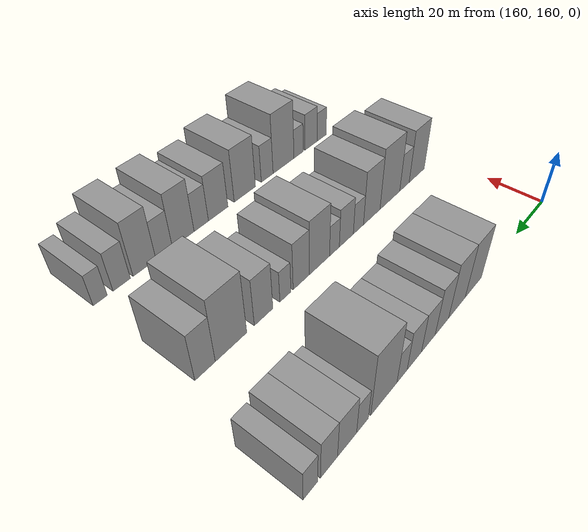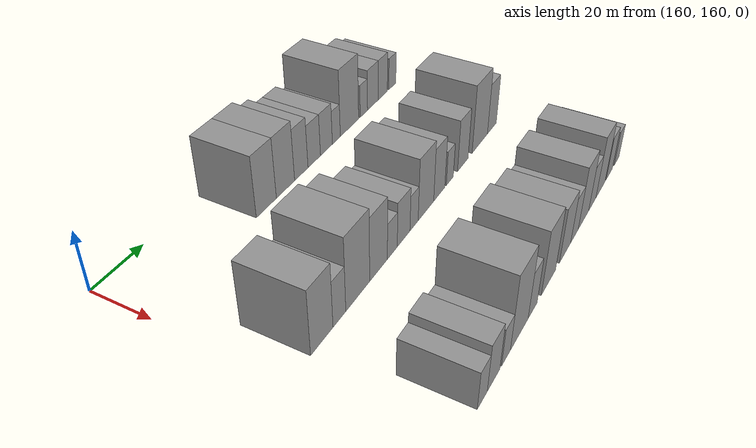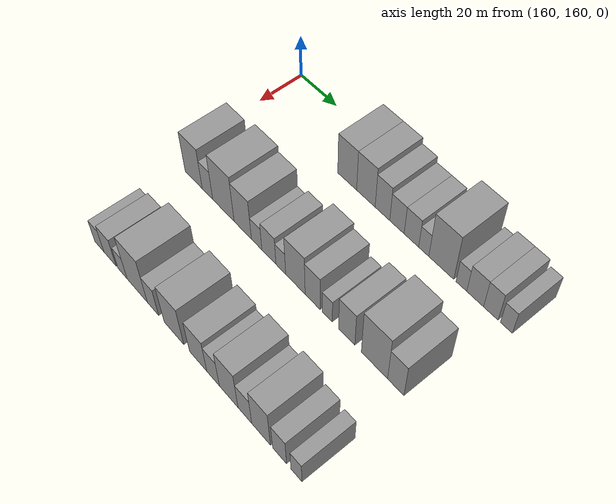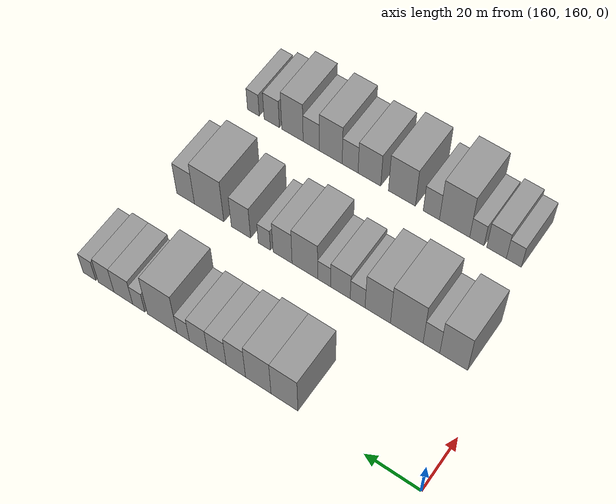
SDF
<sdf version="1.6">
 <world name="default">
  <model name="building_491">
   <static>1</static>
   <pose>170.0000 208.6546 0 0.000000 0.000000 0.000000</pose>
   <link name="link">
    <pose>0 0 10.50 0 0 0</pose>
    <collision name="collision"><geometry><box><size>20.0000 9.8735 21.0000</size></box></geometry></collision>
    <visual name="visual">
     <cast_shadows>0</cast_shadows>
     <geometry><box><size>20.0000 9.8735 21.0000</size></box></geometry>
     <material>
      <script>
       <uri>model://grey_wall/materials/scripts</uri>
       <uri>model://grey_wall/materials/textures</uri>
       <name>vrc/grey_wall</name>
      </script>
     </material>
    </visual>
   </link>
  </model>
  <model name="building_492">
   <static>1</static>
   <pose>170.0000 218.3264 0 0.000000 0.000000 0.000000</pose>
   <link name="link">
    <pose>0 0 10.50 0 0 0</pose>
    <collision name="collision"><geometry><box><size>20.0000 9.4702 21.0000</size></box></geometry></collision>
    <visual name="visual">
     <cast_shadows>0</cast_shadows>
     <geometry><box><size>20.0000 9.4702 21.0000</size></box></geometry>
     <material>
      <script>
       <uri>model://grey_wall/materials/scripts</uri>
       <uri>model://grey_wall/materials/textures</uri>
       <name>vrc/grey_wall</name>
      </script>
     </material>
    </visual>
   </link>
  </model>
  <model name="building_493">
   <static>1</static>
   <pose>170.0000 226.7028 0 0.000000 0.000000 0.000000</pose>
   <link name="link">
    <pose>0 0 9.00 0 0 0</pose>
    <collision name="collision"><geometry><box><size>20.0000 7.2827 18.0000</size></box></geometry></collision>
    <visual name="visual">
     <cast_shadows>0</cast_shadows>
     <geometry><box><size>20.0000 7.2827 18.0000</size></box></geometry>
     <material>
      <script>
       <uri>model://grey_wall/materials/scripts</uri>
       <uri>model://grey_wall/materials/textures</uri>
       <name>vrc/grey_wall</name>
      </script>
     </material>
    </visual>
   </link>
  </model>
  <model name="building_494">
   <static>1</static>
   <pose>170.0000 233.8704 0 0.000000 0.000000 0.000000</pose>
   <link name="link">
    <pose>0 0 7.50 0 0 0</pose>
    <collision name="collision"><geometry><box><size>20.0000 7.0526 15.0000</size></box></geometry></collision>
    <visual name="visual">
     <cast_shadows>0</cast_shadows>
     <geometry><box><size>20.0000 7.0526 15.0000</size></box></geometry>
     <material>
      <script>
       <uri>model://grey_wall/materials/scripts</uri>
       <uri>model://grey_wall/materials/textures</uri>
       <name>vrc/grey_wall</name>
      </script>
     </material>
    </visual>
   </link>
  </model>
  <model name="building_495">
   <static>1</static>
   <pose>170.0000 240.8802 0 0.000000 0.000000 0.000000</pose>
   <link name="link">
    <pose>0 0 7.50 0 0 0</pose>
    <collision name="collision"><geometry><box><size>20.0000 6.9671 15.0000</size></box></geometry></collision>
    <visual name="visual">
     <cast_shadows>0</cast_shadows>
     <geometry><box><size>20.0000 6.9671 15.0000</size></box></geometry>
     <material>
      <script>
       <uri>model://grey_wall/materials/scripts</uri>
       <uri>model://grey_wall/materials/textures</uri>
       <name>vrc/grey_wall</name>
      </script>
     </material>
    </visual>
   </link>
  </model>
  <model name="building_496">
   <static>1</static>
   <pose>170.0000 246.7692 0 0.000000 0.000000 0.000000</pose>
   <link name="link">
    <pose>0 0 6.00 0 0 0</pose>
    <collision name="collision"><geometry><box><size>20.0000 4.8109 12.0000</size></box></geometry></collision>
    <visual name="visual">
     <cast_shadows>0</cast_shadows>
     <geometry><box><size>20.0000 4.8109 12.0000</size></box></geometry>
     <material>
      <script>
       <uri>model://grey_wall/materials/scripts</uri>
       <uri>model://grey_wall/materials/textures</uri>
       <name>vrc/grey_wall</name>
      </script>
     </material>
    </visual>
   </link>
  </model>
  <model name="building_497">
   <static>1</static>
   <pose>170.0000 254.9441 0 0.000000 0.000000 0.000000</pose>
   <link name="link">
    <pose>0 0 12.00 0 0 0</pose>
    <collision name="collision"><geometry><box><size>20.0000 11.5389 24.0000</size></box></geometry></collision>
    <visual name="visual">
     <cast_shadows>0</cast_shadows>
     <geometry><box><size>20.0000 11.5389 24.0000</size></box></geometry>
     <material>
      <script>
       <uri>model://grey_wall/materials/scripts</uri>
       <uri>model://grey_wall/materials/textures</uri>
       <name>vrc/grey_wall</name>
      </script>
     </material>
    </visual>
   </link>
  </model>
  <model name="building_498">
   <static>1</static>
   <pose>170.0000 264.1340 0 0.000000 0.000000 0.000000</pose>
   <link name="link">
    <pose>0 0 6.00 0 0 0</pose>
    <collision name="collision"><geometry><box><size>20.0000 4.8408 12.0000</size></box></geometry></collision>
    <visual name="visual">
     <cast_shadows>0</cast_shadows>
     <geometry><box><size>20.0000 4.8408 12.0000</size></box></geometry>
     <material>
      <script>
       <uri>model://grey_wall/materials/scripts</uri>
       <uri>model://grey_wall/materials/textures</uri>
       <name>vrc/grey_wall</name>
      </script>
     </material>
    </visual>
   </link>
  </model>
  <model name="building_499">
   <static>1</static>
   <pose>170.0000 270.2805 0 0.000000 0.000000 0.000000</pose>
   <link name="link">
    <pose>0 0 7.50 0 0 0</pose>
    <collision name="collision"><geometry><box><size>20.0000 7.4522 15.0000</size></box></geometry></collision>
    <visual name="visual">
     <cast_shadows>0</cast_shadows>
     <geometry><box><size>20.0000 7.4522 15.0000</size></box></geometry>
     <material>
      <script>
       <uri>model://grey_wall/materials/scripts</uri>
       <uri>model://grey_wall/materials/textures</uri>
       <name>vrc/grey_wall</name>
      </script>
     </material>
    </visual>
   </link>
  </model>
  <model name="building_500">
   <static>1</static>
   <pose>170.0000 277.1647 0 0.000000 0.000000 0.000000</pose>
   <link name="link">
    <pose>0 0 7.50 0 0 0</pose>
    <collision name="collision"><geometry><box><size>20.0000 6.3161 15.0000</size></box></geometry></collision>
    <visual name="visual">
     <cast_shadows>0</cast_shadows>
     <geometry><box><size>20.0000 6.3161 15.0000</size></box></geometry>
     <material>
      <script>
       <uri>model://grey_wall/materials/scripts</uri>
       <uri>model://grey_wall/materials/textures</uri>
       <name>vrc/grey_wall</name>
      </script>
     </material>
    </visual>
   </link>
  </model>
  <model name="building_501">
   <static>1</static>
   <pose>170.0000 283.8808 0 0.000000 0.000000 0.000000</pose>
   <link name="link">
    <pose>0 0 6.00 0 0 0</pose>
    <collision name="collision"><geometry><box><size>20.0000 5.1161 12.0000</size></box></geometry></collision>
    <visual name="visual">
     <cast_shadows>0</cast_shadows>
     <geometry><box><size>20.0000 5.1161 12.0000</size></box></geometry>
     <material>
      <script>
       <uri>model://grey_wall/materials/scripts</uri>
       <uri>model://grey_wall/materials/textures</uri>
       <name>vrc/grey_wall</name>
      </script>
     </material>
    </visual>
   </link>
  </model>
  <model name="building_627">
   <static>1</static>
   <pose>210.0000 173.8556 0 0.000000 0.000000 0.000000</pose>
   <link name="link">
    <pose>0 0 10.50 0 0 0</pose>
    <collision name="collision"><geometry><box><size>20.0000 10.0076 21.0000</size></box></geometry></collision>
    <visual name="visual">
     <cast_shadows>0</cast_shadows>
     <geometry><box><size>20.0000 10.0076 21.0000</size></box></geometry>
     <material>
      <script>
       <uri>model://grey_wall/materials/scripts</uri>
       <uri>model://grey_wall/materials/textures</uri>
       <name>vrc/grey_wall</name>
      </script>
     </material>
    </visual>
   </link>
  </model>
  <model name="building_628">
   <static>1</static>
   <pose>210.0000 181.8722 0 0.000000 0.000000 0.000000</pose>
   <link name="link">
    <pose>0 0 7.50 0 0 0</pose>
    <collision name="collision"><geometry><box><size>20.0000 6.0256 15.0000</size></box></geometry></collision>
    <visual name="visual">
     <cast_shadows>0</cast_shadows>
     <geometry><box><size>20.0000 6.0256 15.0000</size></box></geometry>
     <material>
      <script>
       <uri>model://grey_wall/materials/scripts</uri>
       <uri>model://grey_wall/materials/textures</uri>
       <name>vrc/grey_wall</name>
      </script>
     </material>
    </visual>
   </link>
  </model>
  <model name="building_629">
   <static>1</static>
   <pose>210.0000 190.8622 0 0.000000 0.000000 0.000000</pose>
   <link name="link">
    <pose>0 0 12.00 0 0 0</pose>
    <collision name="collision"><geometry><box><size>20.0000 11.9543 24.0000</size></box></geometry></collision>
    <visual name="visual">
     <cast_shadows>0</cast_shadows>
     <geometry><box><size>20.0000 11.9543 24.0000</size></box></geometry>
     <material>
      <script>
       <uri>model://grey_wall/materials/scripts</uri>
       <uri>model://grey_wall/materials/textures</uri>
       <name>vrc/grey_wall</name>
      </script>
     </material>
    </visual>
   </link>
  </model>
  <model name="building_630">
   <static>1</static>
   <pose>210.0000 201.5550 0 0.000000 0.000000 0.000000</pose>
   <link name="link">
    <pose>0 0 10.50 0 0 0</pose>
    <collision name="collision"><geometry><box><size>20.0000 9.4315 21.0000</size></box></geometry></collision>
    <visual name="visual">
     <cast_shadows>0</cast_shadows>
     <geometry><box><size>20.0000 9.4315 21.0000</size></box></geometry>
     <material>
      <script>
       <uri>model://grey_wall/materials/scripts</uri>
       <uri>model://grey_wall/materials/textures</uri>
       <name>vrc/grey_wall</name>
      </script>
     </material>
    </visual>
   </link>
  </model>
  <model name="building_631">
   <static>1</static>
   <pose>210.0000 209.0473 0 0.000000 0.000000 0.000000</pose>
   <link name="link">
    <pose>0 0 6.00 0 0 0</pose>
    <collision name="collision"><geometry><box><size>20.0000 5.5529 12.0000</size></box></geometry></collision>
    <visual name="visual">
     <cast_shadows>0</cast_shadows>
     <geometry><box><size>20.0000 5.5529 12.0000</size></box></geometry>
     <material>
      <script>
       <uri>model://grey_wall/materials/scripts</uri>
       <uri>model://grey_wall/materials/textures</uri>
       <name>vrc/grey_wall</name>
      </script>
     </material>
    </visual>
   </link>
  </model>
  <model name="building_632">
   <static>1</static>
   <pose>210.0000 215.5193 0 0.000000 0.000000 0.000000</pose>
   <link name="link">
    <pose>0 0 7.50 0 0 0</pose>
    <collision name="collision"><geometry><box><size>20.0000 7.3912 15.0000</size></box></geometry></collision>
    <visual name="visual">
     <cast_shadows>0</cast_shadows>
     <geometry><box><size>20.0000 7.3912 15.0000</size></box></geometry>
     <material>
      <script>
       <uri>model://grey_wall/materials/scripts</uri>
       <uri>model://grey_wall/materials/textures</uri>
       <name>vrc/grey_wall</name>
      </script>
     </material>
    </visual>
   </link>
  </model>
  <model name="building_633">
   <static>1</static>
   <pose>210.0000 221.6967 0 0.000000 0.000000 0.000000</pose>
   <link name="link">
    <pose>0 0 6.00 0 0 0</pose>
    <collision name="collision"><geometry><box><size>20.0000 4.9636 12.0000</size></box></geometry></collision>
    <visual name="visual">
     <cast_shadows>0</cast_shadows>
     <geometry><box><size>20.0000 4.9636 12.0000</size></box></geometry>
     <material>
      <script>
       <uri>model://grey_wall/materials/scripts</uri>
       <uri>model://grey_wall/materials/textures</uri>
       <name>vrc/grey_wall</name>
      </script>
     </material>
    </visual>
   </link>
  </model>
  <model name="building_634">
   <static>1</static>
   <pose>210.0000 229.0891 0 0.000000 0.000000 0.000000</pose>
   <link name="link">
    <pose>0 0 10.50 0 0 0</pose>
    <collision name="collision"><geometry><box><size>20.0000 9.8212 21.0000</size></box></geometry></collision>
    <visual name="visual">
     <cast_shadows>0</cast_shadows>
     <geometry><box><size>20.0000 9.8212 21.0000</size></box></geometry>
     <material>
      <script>
       <uri>model://grey_wall/materials/scripts</uri>
       <uri>model://grey_wall/materials/textures</uri>
       <name>vrc/grey_wall</name>
      </script>
     </material>
    </visual>
   </link>
  </model>
  <model name="building_635">
   <static>1</static>
   <pose>210.0000 237.6921 0 0.000000 0.000000 0.000000</pose>
   <link name="link">
    <pose>0 0 9.00 0 0 0</pose>
    <collision name="collision"><geometry><box><size>20.0000 7.3848 18.0000</size></box></geometry></collision>
    <visual name="visual">
     <cast_shadows>0</cast_shadows>
     <geometry><box><size>20.0000 7.3848 18.0000</size></box></geometry>
     <material>
      <script>
       <uri>model://grey_wall/materials/scripts</uri>
       <uri>model://grey_wall/materials/textures</uri>
       <name>vrc/grey_wall</name>
      </script>
     </material>
    </visual>
   </link>
  </model>
  <model name="building_636">
   <static>1</static>
   <pose>210.0000 244.7992 0 0.000000 0.000000 0.000000</pose>
   <link name="link">
    <pose>0 0 6.00 0 0 0</pose>
    <collision name="collision"><geometry><box><size>20.0000 4.8296 12.0000</size></box></geometry></collision>
    <visual name="visual">
     <cast_shadows>0</cast_shadows>
     <geometry><box><size>20.0000 4.8296 12.0000</size></box></geometry>
     <material>
      <script>
       <uri>model://grey_wall/materials/scripts</uri>
       <uri>model://grey_wall/materials/textures</uri>
       <name>vrc/grey_wall</name>
      </script>
     </material>
    </visual>
   </link>
  </model>
  <model name="building_637">
   <static>1</static>
   <pose>210.0000 254.0417 0 0.000000 0.000000 0.000000</pose>
   <link name="link">
    <pose>0 0 9.00 0 0 0</pose>
    <collision name="collision"><geometry><box><size>20.0000 7.6553 18.0000</size></box></geometry></collision>
    <visual name="visual">
     <cast_shadows>0</cast_shadows>
     <geometry><box><size>20.0000 7.6553 18.0000</size></box></geometry>
     <material>
      <script>
       <uri>model://grey_wall/materials/scripts</uri>
       <uri>model://grey_wall/materials/textures</uri>
       <name>vrc/grey_wall</name>
      </script>
     </material>
    </visual>
   </link>
  </model>
  <model name="building_638">
   <static>1</static>
   <pose>210.0000 266.8141 0 0.000000 0.000000 0.000000</pose>
   <link name="link">
    <pose>0 0 12.00 0 0 0</pose>
    <collision name="collision"><geometry><box><size>20.0000 11.8895 24.0000</size></box></geometry></collision>
    <visual name="visual">
     <cast_shadows>0</cast_shadows>
     <geometry><box><size>20.0000 11.8895 24.0000</size></box></geometry>
     <material>
      <script>
       <uri>model://grey_wall/materials/scripts</uri>
       <uri>model://grey_wall/materials/textures</uri>
       <name>vrc/grey_wall</name>
      </script>
     </material>
    </visual>
   </link>
  </model>
  <model name="building_639">
   <static>1</static>
   <pose>210.0000 276.3681 0 0.000000 0.000000 0.000000</pose>
   <link name="link">
    <pose>0 0 9.00 0 0 0</pose>
    <collision name="collision"><geometry><box><size>20.0000 7.2185 18.0000</size></box></geometry></collision>
    <visual name="visual">
     <cast_shadows>0</cast_shadows>
     <geometry><box><size>20.0000 7.2185 18.0000</size></box></geometry>
     <material>
      <script>
       <uri>model://grey_wall/materials/scripts</uri>
       <uri>model://grey_wall/materials/textures</uri>
       <name>vrc/grey_wall</name>
      </script>
     </material>
    </visual>
   </link>
  </model>
  <model name="building_767">
   <static>1</static>
   <pose>250.0000 176.1910 0 0.000000 0.000000 0.000000</pose>
   <link name="link">
    <pose>0 0 6.00 0 0 0</pose>
    <collision name="collision"><geometry><box><size>20.0000 5.5089 12.0000</size></box></geometry></collision>
    <visual name="visual">
     <cast_shadows>0</cast_shadows>
     <geometry><box><size>20.0000 5.5089 12.0000</size></box></geometry>
     <material>
      <script>
       <uri>model://grey_wall/materials/scripts</uri>
       <uri>model://grey_wall/materials/textures</uri>
       <name>vrc/grey_wall</name>
      </script>
     </material>
    </visual>
   </link>
  </model>
  <model name="building_768">
   <static>1</static>
   <pose>250.0000 182.5848 0 0.000000 0.000000 0.000000</pose>
   <link name="link">
    <pose>0 0 7.50 0 0 0</pose>
    <collision name="collision"><geometry><box><size>20.0000 7.2788 15.0000</size></box></geometry></collision>
    <visual name="visual">
     <cast_shadows>0</cast_shadows>
     <geometry><box><size>20.0000 7.2788 15.0000</size></box></geometry>
     <material>
      <script>
       <uri>model://grey_wall/materials/scripts</uri>
       <uri>model://grey_wall/materials/textures</uri>
       <name>vrc/grey_wall</name>
      </script>
     </material>
    </visual>
   </link>
  </model>
  <model name="building_769">
   <static>1</static>
   <pose>250.0000 189.8993 0 0.000000 0.000000 0.000000</pose>
   <link name="link">
    <pose>0 0 6.00 0 0 0</pose>
    <collision name="collision"><geometry><box><size>20.0000 5.3502 12.0000</size></box></geometry></collision>
    <visual name="visual">
     <cast_shadows>0</cast_shadows>
     <geometry><box><size>20.0000 5.3502 12.0000</size></box></geometry>
     <material>
      <script>
       <uri>model://grey_wall/materials/scripts</uri>
       <uri>model://grey_wall/materials/textures</uri>
       <name>vrc/grey_wall</name>
      </script>
     </material>
    </visual>
   </link>
  </model>
  <model name="building_770">
   <static>1</static>
   <pose>250.0000 198.2873 0 0.000000 0.000000 0.000000</pose>
   <link name="link">
    <pose>0 0 12.00 0 0 0</pose>
    <collision name="collision"><geometry><box><size>20.0000 11.4258 24.0000</size></box></geometry></collision>
    <visual name="visual">
     <cast_shadows>0</cast_shadows>
     <geometry><box><size>20.0000 11.4258 24.0000</size></box></geometry>
     <material>
      <script>
       <uri>model://grey_wall/materials/scripts</uri>
       <uri>model://grey_wall/materials/textures</uri>
       <name>vrc/grey_wall</name>
      </script>
     </material>
    </visual>
   </link>
  </model>
  <model name="building_771">
   <static>1</static>
   <pose>250.0000 207.0915 0 0.000000 0.000000 0.000000</pose>
   <link name="link">
    <pose>0 0 7.50 0 0 0</pose>
    <collision name="collision"><geometry><box><size>20.0000 6.1825 15.0000</size></box></geometry></collision>
    <visual name="visual">
     <cast_shadows>0</cast_shadows>
     <geometry><box><size>20.0000 6.1825 15.0000</size></box></geometry>
     <material>
      <script>
       <uri>model://grey_wall/materials/scripts</uri>
       <uri>model://grey_wall/materials/textures</uri>
       <name>vrc/grey_wall</name>
      </script>
     </material>
    </visual>
   </link>
  </model>
  <model name="building_772">
   <static>1</static>
   <pose>250.0000 218.4120 0 0.000000 0.000000 0.000000</pose>
   <link name="link">
    <pose>0 0 10.50 0 0 0</pose>
    <collision name="collision"><geometry><box><size>20.0000 10.4584 21.0000</size></box></geometry></collision>
    <visual name="visual">
     <cast_shadows>0</cast_shadows>
     <geometry><box><size>20.0000 10.4584 21.0000</size></box></geometry>
     <material>
      <script>
       <uri>model://grey_wall/materials/scripts</uri>
       <uri>model://grey_wall/materials/textures</uri>
       <name>vrc/grey_wall</name>
      </script>
     </material>
    </visual>
   </link>
  </model>
  <model name="building_773">
   <static>1</static>
   <pose>250.0000 231.1126 0 0.000000 0.000000 0.000000</pose>
   <link name="link">
    <pose>0 0 9.00 0 0 0</pose>
    <collision name="collision"><geometry><box><size>20.0000 8.9430 18.0000</size></box></geometry></collision>
    <visual name="visual">
     <cast_shadows>0</cast_shadows>
     <geometry><box><size>20.0000 8.9430 18.0000</size></box></geometry>
     <material>
      <script>
       <uri>model://grey_wall/materials/scripts</uri>
       <uri>model://grey_wall/materials/textures</uri>
       <name>vrc/grey_wall</name>
      </script>
     </material>
    </visual>
   </link>
  </model>
  <model name="building_774">
   <static>1</static>
   <pose>250.0000 238.7459 0 0.000000 0.000000 0.000000</pose>
   <link name="link">
    <pose>0 0 7.50 0 0 0</pose>
    <collision name="collision"><geometry><box><size>20.0000 6.3235 15.0000</size></box></geometry></collision>
    <visual name="visual">
     <cast_shadows>0</cast_shadows>
     <geometry><box><size>20.0000 6.3235 15.0000</size></box></geometry>
     <material>
      <script>
       <uri>model://grey_wall/materials/scripts</uri>
       <uri>model://grey_wall/materials/textures</uri>
       <name>vrc/grey_wall</name>
      </script>
     </material>
    </visual>
   </link>
  </model>
  <model name="building_775">
   <static>1</static>
   <pose>250.0000 246.4641 0 0.000000 0.000000 0.000000</pose>
   <link name="link">
    <pose>0 0 10.50 0 0 0</pose>
    <collision name="collision"><geometry><box><size>20.0000 9.1130 21.0000</size></box></geometry></collision>
    <visual name="visual">
     <cast_shadows>0</cast_shadows>
     <geometry><box><size>20.0000 9.1130 21.0000</size></box></geometry>
     <material>
      <script>
       <uri>model://grey_wall/materials/scripts</uri>
       <uri>model://grey_wall/materials/textures</uri>
       <name>vrc/grey_wall</name>
      </script>
     </material>
    </visual>
   </link>
  </model>
  <model name="building_776">
   <static>1</static>
   <pose>250.0000 254.3179 0 0.000000 0.000000 0.000000</pose>
   <link name="link">
    <pose>0 0 7.50 0 0 0</pose>
    <collision name="collision"><geometry><box><size>20.0000 6.5946 15.0000</size></box></geometry></collision>
    <visual name="visual">
     <cast_shadows>0</cast_shadows>
     <geometry><box><size>20.0000 6.5946 15.0000</size></box></geometry>
     <material>
      <script>
       <uri>model://grey_wall/materials/scripts</uri>
       <uri>model://grey_wall/materials/textures</uri>
       <name>vrc/grey_wall</name>
      </script>
     </material>
    </visual>
   </link>
  </model>
  <model name="building_777">
   <static>1</static>
   <pose>250.0000 261.9850 0 0.000000 0.000000 0.000000</pose>
   <link name="link">
    <pose>0 0 10.50 0 0 0</pose>
    <collision name="collision"><geometry><box><size>20.0000 8.7395 21.0000</size></box></geometry></collision>
    <visual name="visual">
     <cast_shadows>0</cast_shadows>
     <geometry><box><size>20.0000 8.7395 21.0000</size></box></geometry>
     <material>
      <script>
       <uri>model://grey_wall/materials/scripts</uri>
       <uri>model://grey_wall/materials/textures</uri>
       <name>vrc/grey_wall</name>
      </script>
     </material>
    </visual>
   </link>
  </model>
  <model name="building_778">
   <static>1</static>
   <pose>250.0000 270.5105 0 0.000000 0.000000 0.000000</pose>
   <link name="link">
    <pose>0 0 7.50 0 0 0</pose>
    <collision name="collision"><geometry><box><size>20.0000 6.3114 15.0000</size></box></geometry></collision>
    <visual name="visual">
     <cast_shadows>0</cast_shadows>
     <geometry><box><size>20.0000 6.3114 15.0000</size></box></geometry>
     <material>
      <script>
       <uri>model://grey_wall/materials/scripts</uri>
       <uri>model://grey_wall/materials/textures</uri>
       <name>vrc/grey_wall</name>
      </script>
     </material>
    </visual>
   </link>
  </model>
  <model name="building_779">
   <static>1</static>
   <pose>250.0000 278.1190 0 0.000000 0.000000 0.000000</pose>
   <link name="link">
    <pose>0 0 6.00 0 0 0</pose>
    <collision name="collision"><geometry><box><size>20.0000 4.9056 12.0000</size></box></geometry></collision>
    <visual name="visual">
     <cast_shadows>0</cast_shadows>
     <geometry><box><size>20.0000 4.9056 12.0000</size></box></geometry>
     <material>
      <script>
       <uri>model://grey_wall/materials/scripts</uri>
       <uri>model://grey_wall/materials/textures</uri>
       <name>vrc/grey_wall</name>
      </script>
     </material>
    </visual>
   </link>
  </model>
 </world>
</sdf>
